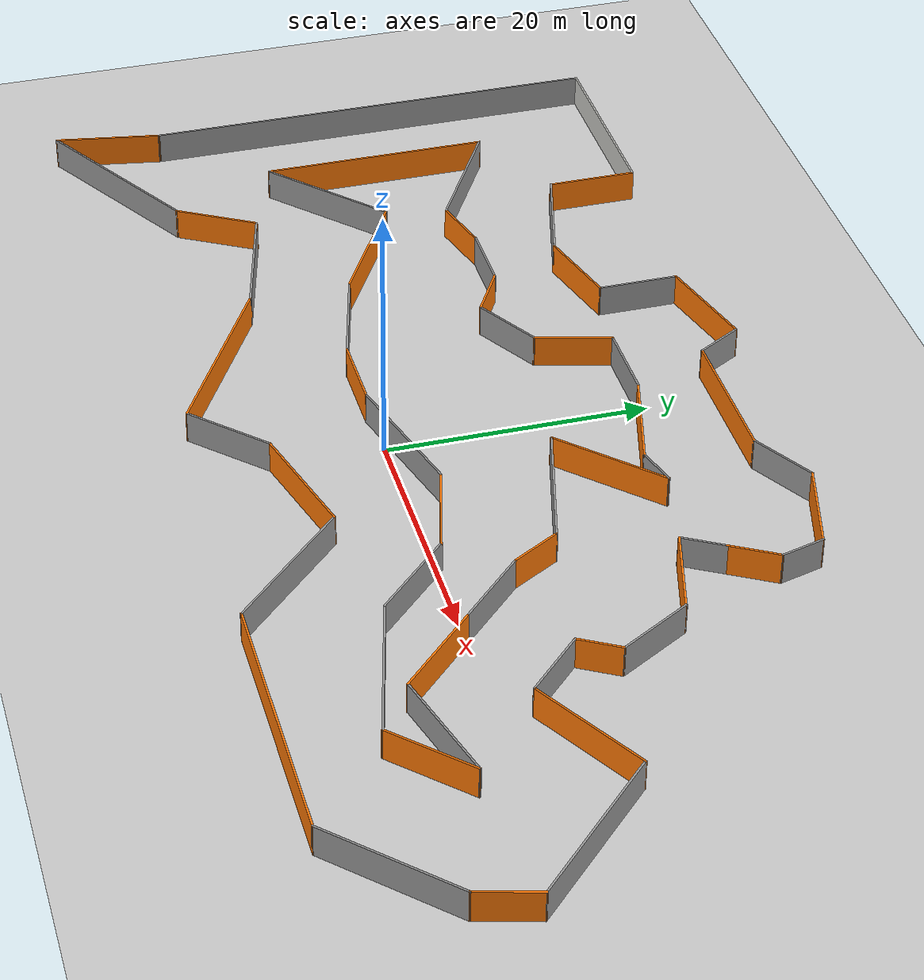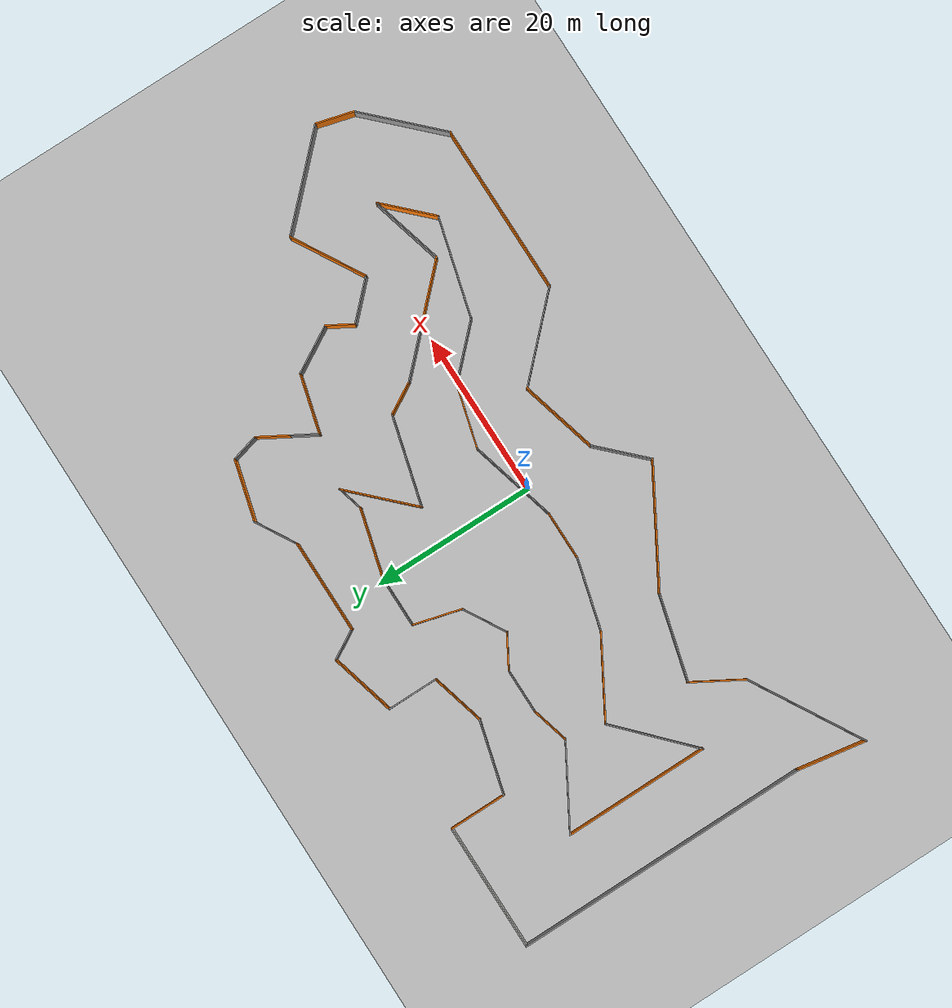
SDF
<sdf version="1.7">
 <world name="default">
  <light name="sun" type="directional">
   <pose>0 0 10 0 -0 0</pose>
   <diffuse>0.8 0.8 0.8 1</diffuse>
   <specular>0.2 0.2 0.2 1</specular>
   <attenuation>
    <range>1000</range>
    <constant>0.9</constant>
    <linear>0.01</linear>
    <quadratic>0.001</quadratic>
   </attenuation>
   <direction>-0.5 0.1 -0.9</direction>
   <spot><inner_angle>0</inner_angle><outer_angle>0</outer_angle><falloff>0</falloff></spot>
  </light>
  <model name="ground_plane">
   <static>1</static>
   <link name="link">
    <collision name="collision">
     <geometry><plane><normal>0 0 1</normal><size>100 100</size></plane></geometry>
     <surface>
      <contact><collide_bitmask>65535</collide_bitmask></contact>
      <friction><ode><mu>100</mu><mu2>50</mu2></ode></friction>
     </surface>
    </collision>
    <visual name="visual">
     <cast_shadows>0</cast_shadows>
     <geometry><plane><normal>0 0 1</normal><size>100 100</size></plane></geometry>
     <material>
      <script><uri>file://media/materials/scripts/gazebo.material</uri><name>Gazebo/Grey</name></script>
     </material>
    </visual>
   </link>
  </model>
  <gravity>0 0 -9.8</gravity>
  <magnetic_field>6e-06 2.3e-05 -4.2e-05</magnetic_field>
  <atmosphere type="adiabatic"/>
  <physics type="ode">
   <max_step_size>0.001</max_step_size>
   <real_time_factor>1</real_time_factor>
   <real_time_update_rate>1000</real_time_update_rate>
  </physics>
  <scene><ambient>0.4 0.4 0.4 1</ambient><background>0.7 0.7 0.7 1</background><shadows>1</shadows></scene>
  <spherical_coordinates>
   <surface_model>EARTH_WGS84</surface_model>
   <latitude_deg>0</latitude_deg>
   <longitude_deg>0</longitude_deg>
   <elevation>0</elevation>
   <heading_deg>0</heading_deg>
  </spherical_coordinates>
  <model name="Wall-Track">
   <pose>1.71304 5.97331 0 0 -0 0</pose>
   <link name="Wall_10">
    <collision name="Wall_10_Collision">
     <geometry><box><size>8.25 0.15 2.5</size></box></geometry>
     <pose>0 0 1.25 0 -0 0</pose>
    </collision>
    <visual name="Wall_10_Visual">
     <pose>0 0 1.25 0 -0 0</pose>
     <geometry><box><size>8.25 0.15 2.5</size></box></geometry>
     <material>
      <script><uri>file://media/materials/scripts/gazebo.material</uri><name>Gazebo/Grey</name></script>
      <ambient>0.996078 0.47451 0.0196078 1</ambient>
     </material>
     <meta><layer>0</layer></meta>
    </visual>
    <pose>-10.185 21.3554 0 0 -0 0.261799</pose>
   </link>
   <link name="Wall_11">
    <collision name="Wall_11_Collision">
     <geometry><box><size>4 0.15 2.5</size></box></geometry>
     <pose>0 0 1.25 0 -0 0</pose>
    </collision>
    <visual name="Wall_11_Visual">
     <pose>0 0 1.25 0 -0 0</pose>
     <geometry><box><size>4 0.15 2.5</size></box></geometry>
     <material>
      <script><uri>file://media/materials/scripts/gazebo.material</uri><name>Gazebo/Grey</name></script>
      <ambient>0 0 0 1</ambient>
     </material>
     <meta><layer>0</layer></meta>
    </visual>
    <pose>-5.31055 20.7365 0 0 -0 -1.0472</pose>
   </link>
   <link name="Wall_12">
    <collision name="Wall_12_Collision">
     <geometry><box><size>11.5 0.15 2.5</size></box></geometry>
     <pose>0 0 1.25 0 -0 0</pose>
    </collision>
    <visual name="Wall_12_Visual">
     <pose>0 0 1.25 0 -0 0</pose>
     <geometry><box><size>11.5 0.15 2.5</size></box></geometry>
     <material>
      <script><uri>file://media/materials/scripts/gazebo.material</uri><name>Gazebo/Grey</name></script>
      <ambient>0.996078 0.47451 0.0196078 1</ambient>
     </material>
     <meta><layer>0</layer></meta>
    </visual>
    <pose>1.32695 19.0694 0 0 -0 0</pose>
   </link>
   <link name="Wall_13">
    <collision name="Wall_13_Collision">
     <geometry><box><size>5.5 0.15 2.5</size></box></geometry>
     <pose>0 0 1.25 0 -0 0</pose>
    </collision>
    <visual name="Wall_13_Visual">
     <pose>0 0 1.25 0 -0 0</pose>
     <geometry><box><size>5.5 0.15 2.5</size></box></geometry>
     <material>
      <script><uri>file://media/materials/scripts/gazebo.material</uri><name>Gazebo/Grey</name></script>
      <ambient>0 0 0 1</ambient>
     </material>
     <meta><layer>0</layer></meta>
    </visual>
    <pose>9.31857 20.4069 0 0 -0 0.523599</pose>
   </link>
   <link name="Wall_14">
    <collision name="Wall_14_Collision">
     <geometry><box><size>7.5 0.15 2.5</size></box></geometry>
     <pose>0 0 1.25 0 -0 0</pose>
    </collision>
    <visual name="Wall_14_Visual">
     <pose>0 0 1.25 0 -0 0</pose>
     <geometry><box><size>7.5 0.15 2.5</size></box></geometry>
     <material>
      <script><uri>file://media/materials/scripts/gazebo.material</uri><name>Gazebo/Grey</name></script>
      <ambient>0.996078 0.47451 0.0196078 1</ambient>
     </material>
     <meta><layer>0</layer></meta>
    </visual>
    <pose>15.185 20.7933 0 0 -0 -0.261799</pose>
   </link>
   <link name="Wall_15">
    <collision name="Wall_15_Collision">
     <geometry><box><size>3.5 0.15 2.5</size></box></geometry>
     <pose>0 0 1.25 0 -0 0</pose>
    </collision>
    <visual name="Wall_15_Visual">
     <pose>0 0 1.25 0 -0 0</pose>
     <geometry><box><size>3.5 0.15 2.5</size></box></geometry>
     <material>
      <script><uri>file://media/materials/scripts/gazebo.material</uri><name>Gazebo/Grey</name></script>
      <ambient>0 0 0 1</ambient>
     </material>
     <meta><layer>0</layer></meta>
    </visual>
    <pose>19.1683 18.2242 0 0 -0 -1.309</pose>
   </link>
   <link name="Wall_16">
    <collision name="Wall_16_Collision">
     <geometry><box><size>4 0.15 2.5</size></box></geometry>
     <pose>0 0 1.25 0 -0 0</pose>
    </collision>
    <visual name="Wall_16_Visual">
     <pose>0 0 1.25 0 -0 0</pose>
     <geometry><box><size>4 0.15 2.5</size></box></geometry>
     <material>
      <script><uri>file://media/materials/scripts/gazebo.material</uri><name>Gazebo/Grey</name></script>
      <ambient>0.996078 0.47451 0.0196078 1</ambient>
     </material>
     <meta><layer>0</layer></meta>
    </visual>
    <pose>18.6393 14.9392 0 0 -0 -2.0944</pose>
   </link>
   <link name="Wall_17">
    <collision name="Wall_17_Collision">
     <geometry><box><size>3.5 0.15 2.5</size></box></geometry>
     <pose>0 0 1.25 0 -0 0</pose>
    </collision>
    <visual name="Wall_17_Visual">
     <pose>0 0 1.25 0 -0 0</pose>
     <geometry><box><size>3.5 0.15 2.5</size></box></geometry>
     <material>
      <script><uri>file://media/materials/scripts/gazebo.material</uri><name>Gazebo/Grey</name></script>
      <ambient>0 0 0 1</ambient>
     </material>
     <meta><layer>0</layer></meta>
    </visual>
    <pose>16.8393 11.8215 0 0 -0 -2.0944</pose>
   </link>
   <link name="Wall_18">
    <collision name="Wall_18_Collision">
     <geometry><box><size>7.25 0.15 2.5</size></box></geometry>
     <pose>0 0 1.25 0 -0 0</pose>
    </collision>
    <visual name="Wall_18_Visual">
     <pose>0 0 1.25 0 -0 0</pose>
     <geometry><box><size>7.25 0.15 2.5</size></box></geometry>
     <material>
      <script><uri>file://media/materials/scripts/gazebo.material</uri><name>Gazebo/Grey</name></script>
      <ambient>0.996078 0.47451 0.0196078 1</ambient>
     </material>
     <meta><layer>0</layer></meta>
    </visual>
    <pose>19.4308 9.45206 0 0 -0 -0.261799</pose>
   </link>
   <link name="Wall_19">
    <collision name="Wall_19_Collision">
     <geometry><box><size>6.25 0.15 2.5</size></box></geometry>
     <pose>0 0 1.25 0 -0 0</pose>
    </collision>
    <visual name="Wall_19_Visual">
     <pose>0 0 1.25 0 -0 0</pose>
     <geometry><box><size>6.25 0.15 2.5</size></box></geometry>
     <material>
      <script><uri>file://media/materials/scripts/gazebo.material</uri><name>Gazebo/Grey</name></script>
      <ambient>0 0 0 1</ambient>
     </material>
     <meta><layer>0</layer></meta>
    </visual>
    <pose>24.3849 5.89188 0 0 -0 -1.0472</pose>
   </link>
   <link name="Wall_20">
    <collision name="Wall_20_Collision">
     <geometry><box><size>3.5 0.15 2.5</size></box></geometry>
     <pose>0 0 1.25 0 -0 0</pose>
    </collision>
    <visual name="Wall_20_Visual">
     <pose>0 0 1.25 0 -0 0</pose>
     <geometry><box><size>3.5 0.15 2.5</size></box></geometry>
     <material>
      <script><uri>file://media/materials/scripts/gazebo.material</uri><name>Gazebo/Grey</name></script>
      <ambient>0.996078 0.47451 0.0196078 1</ambient>
     </material>
     <meta><layer>0</layer></meta>
    </visual>
    <pose>25.0724 1.79991 0 0 -0 -2.0944</pose>
   </link>
   <link name="Wall_21">
    <collision name="Wall_21_Collision">
     <geometry><box><size>5.75 0.15 2.5</size></box></geometry>
     <pose>0 0 1.25 0 -0 0</pose>
    </collision>
    <visual name="Wall_21_Visual">
     <pose>0 0 1.25 0 -0 0</pose>
     <geometry><box><size>5.75 0.15 2.5</size></box></geometry>
     <material>
      <script><uri>file://media/materials/scripts/gazebo.material</uri><name>Gazebo/Grey</name></script>
      <ambient>0 0 0 1</ambient>
     </material>
     <meta><layer>0</layer></meta>
    </visual>
    <pose>26.2148 -1.63058 0 0 -0 -0.785398</pose>
   </link>
   <link name="Wall_22">
    <collision name="Wall_22_Collision">
     <geometry><box><size>9.75 0.15 2.5</size></box></geometry>
     <pose>0 0 1.25 0 -0 0</pose>
    </collision>
    <visual name="Wall_22_Visual">
     <pose>0 0 1.25 0 -0 0</pose>
     <geometry><box><size>9.75 0.15 2.5</size></box></geometry>
     <material>
      <script><uri>file://media/materials/scripts/gazebo.material</uri><name>Gazebo/Grey</name></script>
      <ambient>0.996078 0.47451 0.0196078 1</ambient>
     </material>
     <meta><layer>0</layer></meta>
    </visual>
    <pose>32.3516 -1.21048 0 0 -0 0.523599</pose>
   </link>
   <link name="Wall_23">
    <collision name="Wall_23_Collision">
     <geometry><box><size>13.25 0.15 2.5</size></box></geometry>
     <pose>0 0 1.25 0 -0 0</pose>
    </collision>
    <visual name="Wall_23_Visual">
     <pose>0 0 1.25 0 -0 0</pose>
     <geometry><box><size>13.25 0.15 2.5</size></box></geometry>
     <material>
      <script><uri>file://media/materials/scripts/gazebo.material</uri><name>Gazebo/Grey</name></script>
      <ambient>0 0 0 1</ambient>
     </material>
     <meta><layer>0</layer></meta>
    </visual>
    <pose>41.14 -3.44203 0 0 -0 -0.785398</pose>
   </link>
   <link name="Wall_24">
    <collision name="Wall_24_Collision">
     <geometry><box><size>4.75 0.15 2.5</size></box></geometry>
     <pose>0 0 1.25 0 -0 0</pose>
    </collision>
    <visual name="Wall_24_Visual">
     <pose>0 0 1.25 0 -0 0</pose>
     <geometry><box><size>4.75 0.15 2.5</size></box></geometry>
     <material>
      <script><uri>file://media/materials/scripts/gazebo.material</uri><name>Gazebo/Grey</name></script>
      <ambient>0.996078 0.47451 0.0196078 1</ambient>
     </material>
     <meta><layer>0</layer></meta>
    </visual>
    <pose>45.1763 -10.2952 0 0 -0 -1.8326</pose>
   </link>
   <link name="Wall_25">
    <collision name="Wall_25_Collision">
     <geometry><box><size>11.25 0.15 2.5</size></box></geometry>
     <pose>0 0 1.25 0 -0 0</pose>
    </collision>
    <visual name="Wall_25_Visual">
     <pose>0 0 1.25 0 -0 0</pose>
     <geometry><box><size>11.25 0.15 2.5</size></box></geometry>
     <material>
      <script><uri>file://media/materials/scripts/gazebo.material</uri><name>Gazebo/Grey</name></script>
      <ambient>0 0 0 1</ambient>
     </material>
     <meta><layer>0</layer></meta>
    </visual>
    <pose>40.6566 -16.4413 0 0 -0 -2.35619</pose>
   </link>
   <link name="Wall_26">
    <collision name="Wall_26_Collision">
     <geometry><box><size>20.75 0.15 2.5</size></box></geometry>
     <pose>0 0 1.25 0 -0 0</pose>
    </collision>
    <visual name="Wall_26_Visual">
     <pose>0 0 1.25 0 -0 0</pose>
     <geometry><box><size>20.75 0.15 2.5</size></box></geometry>
     <material>
      <script><uri>file://media/materials/scripts/gazebo.material</uri><name>Gazebo/Grey</name></script>
      <ambient>0.996078 0.47451 0.0196078 1</ambient>
     </material>
     <meta><layer>0</layer></meta>
    </visual>
    <pose>26.4321 -20.3657 0 0 -0 3.14159</pose>
   </link>
   <link name="Wall_27">
    <collision name="Wall_27_Collision">
     <geometry><box><size>12 0.15 2.5</size></box></geometry>
     <pose>0 0 1.25 0 -0 0</pose>
    </collision>
    <visual name="Wall_27_Visual">
     <pose>0 0 1.25 0 -0 0</pose>
     <geometry><box><size>12 0.15 2.5</size></box></geometry>
     <material>
      <script><uri>file://media/materials/scripts/gazebo.material</uri><name>Gazebo/Grey</name></script>
      <ambient>0 0 0 1</ambient>
     </material>
     <meta><layer>0</layer></meta>
    </visual>
    <pose>11.9425 -16.1761 0 0 -0 2.35619</pose>
   </link>
   <link name="Wall_28">
    <collision name="Wall_28_Collision">
     <geometry><box><size>9.75 0.15 2.5</size></box></geometry>
     <pose>0 0 1.25 0 -0 0</pose>
    </collision>
    <visual name="Wall_28_Visual">
     <pose>0 0 1.25 0 -0 0</pose>
     <geometry><box><size>9.75 0.15 2.5</size></box></geometry>
     <material>
      <script><uri>file://media/materials/scripts/gazebo.material</uri><name>Gazebo/Grey</name></script>
      <ambient>0.996078 0.47451 0.0196078 1</ambient>
     </material>
     <meta><layer>0</layer></meta>
    </visual>
    <pose>3.11649 -13.2288 0 0 -0 -2.87979</pose>
   </link>
   <link name="Wall_29">
    <collision name="Wall_29_Collision">
     <geometry><box><size>7.25 0.15 2.5</size></box></geometry>
     <pose>0 0 1.25 0 -0 0</pose>
    </collision>
    <visual name="Wall_29_Visual">
     <pose>0 0 1.25 0 -0 0</pose>
     <geometry><box><size>7.25 0.15 2.5</size></box></geometry>
     <material>
      <script><uri>file://media/materials/scripts/gazebo.material</uri><name>Gazebo/Grey</name></script>
      <ambient>0 0 0 1</ambient>
     </material>
     <meta><layer>0</layer></meta>
    </visual>
    <pose>-4.03019 -16.9814 0 0 -0 -2.35619</pose>
   </link>
   <link name="Wall_30">
    <collision name="Wall_30_Collision">
     <geometry><box><size>15.25 0.15 2.5</size></box></geometry>
     <pose>0 0 1.25 0 -0 0</pose>
    </collision>
    <visual name="Wall_30_Visual">
     <pose>0 0 1.25 0 -0 0</pose>
     <geometry><box><size>15.25 0.15 2.5</size></box></geometry>
     <material>
      <script><uri>file://media/materials/scripts/gazebo.material</uri><name>Gazebo/Grey</name></script>
      <ambient>0.996078 0.47451 0.0196078 1</ambient>
     </material>
     <meta><layer>0</layer></meta>
    </visual>
    <pose>-13.0789 -15.7166 0 0 -0 2.61799</pose>
   </link>
   <link name="Wall_31">
    <collision name="Wall_31_Collision">
     <geometry><box><size>10.5 0.15 2.5</size></box></geometry>
     <pose>0 0 1.25 0 -0 0</pose>
    </collision>
    <visual name="Wall_31_Visual">
     <pose>0 0 1.25 0 -0 0</pose>
     <geometry><box><size>10.5 0.15 2.5</size></box></geometry>
     <material>
      <script><uri>file://media/materials/scripts/gazebo.material</uri><name>Gazebo/Grey</name></script>
      <ambient>0 0 0 1</ambient>
     </material>
     <meta><layer>0</layer></meta>
    </visual>
    <pose>-24.6161 -10.6022 0 0 -0 2.87979</pose>
   </link>
   <link name="Wall_32">
    <collision name="Wall_32_Collision">
     <geometry><box><size>6.75 0.15 2.5</size></box></geometry>
     <pose>0 0 1.25 0 -0 0</pose>
    </collision>
    <visual name="Wall_32_Visual">
     <pose>0 0 1.25 0 -0 0</pose>
     <geometry><box><size>6.75 0.15 2.5</size></box></geometry>
     <material>
      <script><uri>file://media/materials/scripts/gazebo.material</uri><name>Gazebo/Grey</name></script>
      <ambient>0.996078 0.47451 0.0196078 1</ambient>
     </material>
     <meta><layer>0</layer></meta>
    </visual>
    <pose>-31.2647 -12.1207 0 0 -0 -2.0944</pose>
   </link>
   <link name="Wall_33">
    <collision name="Wall_33_Collision">
     <geometry><box><size>15 0.15 2.5</size></box></geometry>
     <pose>0 0 1.25 0 -0 0</pose>
    </collision>
    <visual name="Wall_33_Visual">
     <pose>0 0 1.25 0 -0 0</pose>
     <geometry><box><size>15 0.15 2.5</size></box></geometry>
     <material>
      <script><uri>file://media/materials/scripts/gazebo.material</uri><name>Gazebo/Grey</name></script>
      <ambient>0 0 0 1</ambient>
     </material>
     <meta><layer>0</layer></meta>
    </visual>
    <pose>-39.345 -18.6911 0 0 -0 -2.61799</pose>
   </link>
   <link name="Wall_34">
    <collision name="Wall_34_Collision">
     <geometry><box><size>8.46268 0.15 2.5</size></box></geometry>
     <pose>0 0 1.25 0 -0 0</pose>
    </collision>
    <visual name="Wall_34_Visual">
     <pose>0 0 1.25 0 -0 0</pose>
     <geometry><box><size>8.46268 0.15 2.5</size></box></geometry>
     <material>
      <script><uri>file://media/materials/scripts/gazebo.material</uri><name>Gazebo/Grey</name></script>
      <ambient>0.996078 0.47451 0.0196078 1</ambient>
     </material>
     <meta><layer>0</layer></meta>
    </visual>
    <pose>-45.0729 -18.307 0 0 -0 1.40101</pose>
   </link>
   <link name="Wall_36">
    <collision name="Wall_36_Collision">
     <geometry><box><size>17.75 0.15 2.5</size></box></geometry>
     <pose>0 0 1.25 0 -0 0</pose>
    </collision>
    <visual name="Wall_36_Visual">
     <pose>0 0 1.25 0 -0 0</pose>
     <geometry><box><size>17.75 0.15 2.5</size></box></geometry>
     <material>
      <script><uri>file://media/materials/scripts/gazebo.material</uri><name>Gazebo/Grey</name></script>
      <ambient>0.996078 0.47451 0.0196078 1</ambient>
     </material>
     <meta><layer>0</layer></meta>
    </visual>
    <pose>-36.7003 2.1643 0 0 -0 1.5708</pose>
   </link>
   <link name="Wall_37">
    <collision name="Wall_37_Collision">
     <geometry><box><size>10.75 0.15 2.5</size></box></geometry>
     <pose>0 0 1.25 0 -0 0</pose>
    </collision>
    <visual name="Wall_37_Visual">
     <pose>0 0 1.25 0 -0 0</pose>
     <geometry><box><size>10.75 0.15 2.5</size></box></geometry>
     <material>
      <script><uri>file://media/materials/scripts/gazebo.material</uri><name>Gazebo/Grey</name></script>
      <ambient>0 0 0 1</ambient>
     </material>
     <meta><layer>0</layer></meta>
    </visual>
    <pose>-32.1104 8.31429 0 0 -0 -0.523599</pose>
   </link>
   <link name="Wall_38">
    <collision name="Wall_38_Collision">
     <geometry><box><size>4.75 0.15 2.5</size></box></geometry>
     <pose>0 0 1.25 0 -0 0</pose>
    </collision>
    <visual name="Wall_38_Visual">
     <pose>0 0 1.25 0 -0 0</pose>
     <geometry><box><size>4.75 0.15 2.5</size></box></geometry>
     <material>
      <script><uri>file://media/materials/scripts/gazebo.material</uri><name>Gazebo/Grey</name></script>
      <ambient>0.996078 0.47451 0.0196078 1</ambient>
     </material>
     <meta><layer>0</layer></meta>
    </visual>
    <pose>-25.2988 6.25958 0 0 -0 0.261799</pose>
   </link>
   <link name="Wall_39">
    <collision name="Wall_39_Collision">
     <geometry><box><size>5.5 0.15 2.5</size></box></geometry>
     <pose>0 0 1.25 0 -0 0</pose>
    </collision>
    <visual name="Wall_39_Visual">
     <pose>0 0 1.25 0 -0 0</pose>
     <geometry><box><size>5.5 0.15 2.5</size></box></geometry>
     <material>
      <script><uri>file://media/materials/scripts/gazebo.material</uri><name>Gazebo/Grey</name></script>
      <ambient>0 0 0 1</ambient>
     </material>
     <meta><layer>0</layer></meta>
    </visual>
    <pose>-20.4022 6.85486 0 0 -0 0</pose>
   </link>
   <link name="Wall_4">
    <collision name="Wall_4_Collision">
     <geometry><box><size>36 0.15 2.5</size></box></geometry>
     <pose>0 0 1.25 0 -0 0</pose>
    </collision>
    <visual name="Wall_4_Visual">
     <pose>0 0 1.25 0 -0 0</pose>
     <geometry><box><size>36 0.15 2.5</size></box></geometry>
     <material>
      <script><uri>file://media/materials/scripts/gazebo.material</uri><name>Gazebo/Grey</name></script>
      <ambient>0 0 0 1</ambient>
     </material>
     <meta><layer>0</layer></meta>
    </visual>
    <pose>-44.3706 3.71453 0 0 -0 1.5708</pose>
   </link>
   <link name="Wall_40">
    <collision name="Wall_40_Collision">
     <geometry><box><size>4.5 0.15 2.5</size></box></geometry>
     <pose>0 0 1.25 0 -0 0</pose>
    </collision>
    <visual name="Wall_40_Visual">
     <pose>0 0 1.25 0 -0 0</pose>
     <geometry><box><size>4.5 0.15 2.5</size></box></geometry>
     <material>
      <script><uri>file://media/materials/scripts/gazebo.material</uri><name>Gazebo/Grey</name></script>
      <ambient>0.996078 0.47451 0.0196078 1</ambient>
     </material>
     <meta><layer>0</layer></meta>
    </visual>
    <pose>-15.8436 5.76736 0 0 -0 -0.523599</pose>
   </link>
   <link name="Wall_41">
    <collision name="Wall_41_Collision">
     <geometry><box><size>5.75 0.15 2.5</size></box></geometry>
     <pose>0 0 1.25 0 -0 0</pose>
    </collision>
    <visual name="Wall_41_Visual">
     <pose>0 0 1.25 0 -0 0</pose>
     <geometry><box><size>5.75 0.15 2.5</size></box></geometry>
     <material>
      <script><uri>file://media/materials/scripts/gazebo.material</uri><name>Gazebo/Grey</name></script>
      <ambient>0 0 0 1</ambient>
     </material>
     <meta><layer>0</layer></meta>
    </visual>
    <pose>-11.5351 6.07986 0 0 -0 0.523599</pose>
   </link>
   <link name="Wall_42">
    <collision name="Wall_42_Collision">
     <geometry><box><size>6 0.15 2.5</size></box></geometry>
     <pose>0 0 1.25 0 -0 0</pose>
    </collision>
    <visual name="Wall_42_Visual">
     <pose>0 0 1.25 0 -0 0</pose>
     <geometry><box><size>6 0.15 2.5</size></box></geometry>
     <material>
      <script><uri>file://media/materials/scripts/gazebo.material</uri><name>Gazebo/Grey</name></script>
      <ambient>0.996078 0.47451 0.0196078 1</ambient>
     </material>
     <meta><layer>0</layer></meta>
    </visual>
    <pose>-8.35318 10.3052 0 0 -0 1.309</pose>
   </link>
   <link name="Wall_43">
    <collision name="Wall_43_Collision">
     <geometry><box><size>6.25 0.15 2.5</size></box></geometry>
     <pose>0 0 1.25 0 -0 0</pose>
    </collision>
    <visual name="Wall_43_Visual">
     <pose>0 0 1.25 0 -0 0</pose>
     <geometry><box><size>6.25 0.15 2.5</size></box></geometry>
     <material>
      <script><uri>file://media/materials/scripts/gazebo.material</uri><name>Gazebo/Grey</name></script>
      <ambient>0 0 0 1</ambient>
     </material>
     <meta><layer>0</layer></meta>
    </visual>
    <pose>-4.54614 13.1305 0 0 -0 0</pose>
   </link>
   <link name="Wall_44">
    <collision name="Wall_44_Collision">
     <geometry><box><size>8.5 0.15 2.5</size></box></geometry>
     <pose>0 0 1.25 0 -0 0</pose>
    </collision>
    <visual name="Wall_44_Visual">
     <pose>0 0 1.25 0 -0 0</pose>
     <geometry><box><size>8.5 0.15 2.5</size></box></geometry>
     <material>
      <script><uri>file://media/materials/scripts/gazebo.material</uri><name>Gazebo/Grey</name></script>
      <ambient>0.996078 0.47451 0.0196078 1</ambient>
     </material>
     <meta><layer>0</layer></meta>
    </visual>
    <pose>2.5366 12.05 0 0 -0 -0.261799</pose>
   </link>
   <link name="Wall_45">
    <collision name="Wall_45_Collision">
     <geometry><box><size>3.25 0.15 2.5</size></box></geometry>
     <pose>0 0 1.25 0 -0 0</pose>
    </collision>
    <visual name="Wall_45_Visual">
     <pose>0 0 1.25 0 -0 0</pose>
     <geometry><box><size>3.25 0.15 2.5</size></box></geometry>
     <material>
      <script><uri>file://media/materials/scripts/gazebo.material</uri><name>Gazebo/Grey</name></script>
      <ambient>0 0 0 1</ambient>
     </material>
     <meta><layer>0</layer></meta>
    </visual>
    <pose>8.06653 11.3706 0 0 -0 0.261799</pose>
   </link>
   <link name="Wall_46">
    <collision name="Wall_46_Collision">
     <geometry><box><size>9.5 0.15 2.5</size></box></geometry>
     <pose>0 0 1.25 0 -0 0</pose>
    </collision>
    <visual name="Wall_46_Visual">
     <pose>0 0 1.25 0 -0 0</pose>
     <geometry><box><size>9.5 0.15 2.5</size></box></geometry>
     <material>
      <script><uri>file://media/materials/scripts/gazebo.material</uri><name>Gazebo/Grey</name></script>
      <ambient>0.996078 0.47451 0.0196078 1</ambient>
     </material>
     <meta><layer>0</layer></meta>
    </visual>
    <pose>6.25799 8.466 0 0 -0 -2.35619</pose>
   </link>
   <link name="Wall_47">
    <collision name="Wall_47_Collision">
     <geometry><box><size>11 0.15 2.5</size></box></geometry>
     <pose>0 0 1.25 0 -0 0</pose>
    </collision>
    <visual name="Wall_47_Visual">
     <pose>0 0 1.25 0 -0 0</pose>
     <geometry><box><size>11 0.15 2.5</size></box></geometry>
     <material>
      <script><uri>file://media/materials/scripts/gazebo.material</uri><name>Gazebo/Grey</name></script>
      <ambient>0 0 0 1</ambient>
     </material>
     <meta><layer>0</layer></meta>
    </visual>
    <pose>8.19241 3.75619 0 0 -0 -0.261799</pose>
   </link>
   <link name="Wall_48">
    <collision name="Wall_48_Collision">
     <geometry><box><size>4.25 0.15 2.5</size></box></geometry>
     <pose>0 0 1.25 0 -0 0</pose>
    </collision>
    <visual name="Wall_48_Visual">
     <pose>0 0 1.25 0 -0 0</pose>
     <geometry><box><size>4.25 0.15 2.5</size></box></geometry>
     <material>
      <script><uri>file://media/materials/scripts/gazebo.material</uri><name>Gazebo/Grey</name></script>
      <ambient>0.996078 0.47451 0.0196078 1</ambient>
     </material>
     <meta><layer>0</layer></meta>
    </visual>
    <pose>14.4576 0.576742 0 0 -0 -1.0472</pose>
   </link>
   <link name="Wall_49">
    <collision name="Wall_49_Collision">
     <geometry><box><size>6.75 0.15 2.5</size></box></geometry>
     <pose>0 0 1.25 0 -0 0</pose>
    </collision>
    <visual name="Wall_49_Visual">
     <pose>0 0 1.25 0 -0 0</pose>
     <geometry><box><size>6.75 0.15 2.5</size></box></geometry>
     <material>
      <script><uri>file://media/materials/scripts/gazebo.material</uri><name>Gazebo/Grey</name></script>
      <ambient>0 0 0 1</ambient>
     </material>
     <meta><layer>0</layer></meta>
    </visual>
    <pose>17.816 -3.53206 0 0 -0 -0.785398</pose>
   </link>
   <link name="Wall_5">
    <collision name="Wall_5_Collision">
     <geometry><box><size>15.5 0.15 2.5</size></box></geometry>
     <pose>0 0 1.25 0 -0 0</pose>
    </collision>
    <visual name="Wall_5_Visual">
     <pose>0 0 1.25 0 -0 0</pose>
     <geometry><box><size>15.5 0.15 2.5</size></box></geometry>
     <material>
      <script><uri>file://media/materials/scripts/gazebo.material</uri><name>Gazebo/CeilingTiled</name></script>
      <ambient>0.996078 0.47451 0.0196078 1</ambient>
     </material>
     <meta><layer>0</layer></meta>
    </visual>
    <pose>-36.6956 21.6395 0 0 -0 0</pose>
   </link>
   <link name="Wall_50">
    <collision name="Wall_50_Collision">
     <geometry><box><size>8 0.15 2.5</size></box></geometry>
     <pose>0 0 1.25 0 -0 0</pose>
    </collision>
    <visual name="Wall_50_Visual">
     <pose>0 0 1.25 0 -0 0</pose>
     <geometry><box><size>8 0.15 2.5</size></box></geometry>
     <material>
      <script><uri>file://media/materials/scripts/gazebo.material</uri><name>Gazebo/Grey</name></script>
      <ambient>0.996078 0.47451 0.0196078 1</ambient>
     </material>
     <meta><layer>0</layer></meta>
    </visual>
    <pose>22.9249 -8.64091 0 0 -0 -0.785398</pose>
   </link>
   <link name="Wall_51">
    <collision name="Wall_51_Collision">
     <geometry><box><size>9.25 0.15 2.5</size></box></geometry>
     <pose>0 0 1.25 0 -0 0</pose>
    </collision>
    <visual name="Wall_51_Visual">
     <pose>0 0 1.25 0 -0 0</pose>
     <geometry><box><size>9.25 0.15 2.5</size></box></geometry>
     <material>
      <script><uri>file://media/materials/scripts/gazebo.material</uri><name>Gazebo/Grey</name></script>
      <ambient>0 0 0 1</ambient>
     </material>
     <meta><layer>0</layer></meta>
    </visual>
    <pose>30.0952 -10.2387 0 0 -0 0.261799</pose>
   </link>
   <link name="Wall_52">
    <collision name="Wall_52_Collision">
     <geometry><box><size>7.25 0.15 2.5</size></box></geometry>
     <pose>0 0 1.25 0 -0 0</pose>
    </collision>
    <visual name="Wall_52_Visual">
     <pose>0 0 1.25 0 -0 0</pose>
     <geometry><box><size>7.25 0.15 2.5</size></box></geometry>
     <material>
      <script><uri>file://media/materials/scripts/gazebo.material</uri><name>Gazebo/Grey</name></script>
      <ambient>0.996078 0.47451 0.0196078 1</ambient>
     </material>
     <meta><layer>0</layer></meta>
    </visual>
    <pose>31.9799 -11.5713 0 0 -0 -2.35619</pose>
   </link>
   <link name="Wall_53">
    <collision name="Wall_53_Collision">
     <geometry><box><size>12.25 0.15 2.5</size></box></geometry>
     <pose>0 0 1.25 0 -0 0</pose>
    </collision>
    <visual name="Wall_53_Visual">
     <pose>0 0 1.25 0 -0 0</pose>
     <geometry><box><size>12.25 0.15 2.5</size></box></geometry>
     <material>
      <script><uri>file://media/materials/scripts/gazebo.material</uri><name>Gazebo/Grey</name></script>
      <ambient>0 0 0 1</ambient>
     </material>
     <meta><layer>0</layer></meta>
    </visual>
    <pose>23.6259 -12.5157 0 0 -0 2.87979</pose>
   </link>
   <link name="Wall_54">
    <collision name="Wall_54_Collision">
     <geometry><box><size>7.75 0.15 2.5</size></box></geometry>
     <pose>0 0 1.25 0 -0 0</pose>
    </collision>
    <visual name="Wall_54_Visual">
     <pose>0 0 1.25 0 -0 0</pose>
     <geometry><box><size>7.75 0.15 2.5</size></box></geometry>
     <material>
      <script><uri>file://media/materials/scripts/gazebo.material</uri><name>Gazebo/Grey</name></script>
      <ambient>0 0 0 1</ambient>
     </material>
     <meta><layer>0</layer></meta>
    </visual>
    <pose>15.095 -8.26279 0 0 -0 2.35619</pose>
   </link>
   <link name="Wall_55">
    <collision name="Wall_55_Collision">
     <geometry><box><size>7.75 0.15 2.5</size></box></geometry>
     <pose>0 0 1.25 0 -0 0</pose>
    </collision>
    <visual name="Wall_55_Visual">
     <pose>0 0 1.25 0 -0 0</pose>
     <geometry><box><size>7.75 0.15 2.5</size></box></geometry>
     <material>
      <script><uri>file://media/materials/scripts/gazebo.material</uri><name>Gazebo/Grey</name></script>
      <ambient>0.996078 0.47451 0.0196078 1</ambient>
     </material>
     <meta><layer>0</layer></meta>
    </visual>
    <pose>8.73749 -4.59227 0 0 -0 2.87979</pose>
   </link>
   <link name="Wall_56">
    <collision name="Wall_56_Collision">
     <geometry><box><size>11 0.15 2.5</size></box></geometry>
     <pose>0 0 1.25 0 -0 0</pose>
    </collision>
    <visual name="Wall_56_Visual">
     <pose>0 0 1.25 0 -0 0</pose>
     <geometry><box><size>11 0.15 2.5</size></box></geometry>
     <material>
      <script><uri>file://media/materials/scripts/gazebo.material</uri><name>Gazebo/Grey</name></script>
      <ambient>0 0 0 1</ambient>
     </material>
     <meta><layer>0</layer></meta>
    </visual>
    <pose>-0.173178 -5.01286 0 0 -0 -2.87979</pose>
   </link>
   <link name="Wall_57">
    <collision name="Wall_57_Collision">
     <geometry><box><size>6 0.15 2.5</size></box></geometry>
     <pose>0 0 1.25 0 -0 0</pose>
    </collision>
    <visual name="Wall_57_Visual">
     <pose>0 0 1.25 0 -0 0</pose>
     <geometry><box><size>6 0.15 2.5</size></box></geometry>
     <material>
      <script><uri>file://media/materials/scripts/gazebo.material</uri><name>Gazebo/Grey</name></script>
      <ambient>0.996078 0.47451 0.0196078 1</ambient>
     </material>
     <meta><layer>0</layer></meta>
    </visual>
    <pose>-8.33833 -6.41695 0 0 -0 3.14159</pose>
   </link>
   <link name="Wall_58">
    <collision name="Wall_58_Collision">
     <geometry><box><size>8.75 0.15 2.5</size></box></geometry>
     <pose>0 0 1.25 0 -0 0</pose>
    </collision>
    <visual name="Wall_58_Visual">
     <pose>0 0 1.25 0 -0 0</pose>
     <geometry><box><size>8.75 0.15 2.5</size></box></geometry>
     <material>
      <script><uri>file://media/materials/scripts/gazebo.material</uri><name>Gazebo/Grey</name></script>
      <ambient>0 0 0 1</ambient>
     </material>
     <meta><layer>0</layer></meta>
    </visual>
    <pose>-15.4168 -5.30403 0 0 -0 2.87979</pose>
   </link>
   <link name="Wall_59">
    <collision name="Wall_59_Collision">
     <geometry><box><size>10.5 0.15 2.5</size></box></geometry>
     <pose>0 0 1.25 0 -0 0</pose>
    </collision>
    <visual name="Wall_59_Visual">
     <pose>0 0 1.25 0 -0 0</pose>
     <geometry><box><size>10.5 0.15 2.5</size></box></geometry>
     <material>
      <script><uri>file://media/materials/scripts/gazebo.material</uri><name>Gazebo/Grey</name></script>
      <ambient>0.996078 0.47451 0.0196078 1</ambient>
     </material>
     <meta><layer>0</layer></meta>
    </visual>
    <pose>-24.052 -1.6036 0 0 -0 2.61799</pose>
   </link>
   <link name="Wall_6">
    <collision name="Wall_6_Collision">
     <geometry><box><size>7 0.15 2.5</size></box></geometry>
     <pose>0 0 1.25 0 -0 0</pose>
    </collision>
    <visual name="Wall_6_Visual">
     <pose>0 0 1.25 0 -0 0</pose>
     <geometry><box><size>7 0.15 2.5</size></box></geometry>
     <material>
      <script><uri>file://media/materials/scripts/gazebo.material</uri><name>Gazebo/Grey</name></script>
      <ambient>0.996078 0.47451 0.0196078 1</ambient>
     </material>
     <meta><layer>0</layer></meta>
    </visual>
    <pose>-29.0206 18.2145 0 0 -0 -1.5708</pose>
   </link>
   <link name="Wall_60">
    <collision name="Wall_60_Collision">
     <geometry><box><size>11.3193 0.15 2.5</size></box></geometry>
     <pose>0 0 1.25 0 -0 0</pose>
    </collision>
    <visual name="Wall_60_Visual">
     <pose>0 0 1.25 0 -0 0</pose>
     <geometry><box><size>11.3193 0.15 2.5</size></box></geometry>
     <material>
      <script><uri>file://media/materials/scripts/gazebo.material</uri><name>Gazebo/Grey</name></script>
      <ambient>0 0 0 1</ambient>
     </material>
     <meta><layer>0</layer></meta>
    </visual>
    <pose>-32.617 -2.82591 0 0 -0 -2.39084</pose>
   </link>
   <link name="Wall_7">
    <collision name="Wall_7_Collision">
     <geometry><box><size>9 0.15 2.5</size></box></geometry>
     <pose>0 0 1.25 0 -0 0</pose>
    </collision>
    <visual name="Wall_7_Visual">
     <pose>0 0 1.25 0 -0 0</pose>
     <geometry><box><size>9 0.15 2.5</size></box></geometry>
     <material>
      <script><uri>file://media/materials/scripts/gazebo.material</uri><name>Gazebo/Grey</name></script>
      <ambient>0 0 0 1</ambient>
     </material>
     <meta><layer>0</layer></meta>
    </visual>
    <pose>-24.7464 13.6443 0 0 -0 -0.261799</pose>
   </link>
   <link name="Wall_8">
    <collision name="Wall_8_Collision">
     <geometry><box><size>6.75 0.15 2.5</size></box></geometry>
     <pose>0 0 1.25 0 -0 0</pose>
    </collision>
    <visual name="Wall_8_Visual">
     <pose>0 0 1.25 0 -0 0</pose>
     <geometry><box><size>6.75 0.15 2.5</size></box></geometry>
     <material>
      <script><uri>file://media/materials/scripts/gazebo.material</uri><name>Gazebo/Grey</name></script>
      <ambient>0.996078 0.47451 0.0196078 1</ambient>
     </material>
     <meta><layer>0</layer></meta>
    </visual>
    <pose>-17.2846 13.3531 0 0 -0 0.261799</pose>
   </link>
   <link name="Wall_9">
    <collision name="Wall_9_Collision">
     <geometry><box><size>6.25 0.15 2.5</size></box></geometry>
     <pose>0 0 1.25 0 -0 0</pose>
    </collision>
    <visual name="Wall_9_Visual">
     <pose>0 0 1.25 0 -0 0</pose>
     <geometry><box><size>6.25 0.15 2.5</size></box></geometry>
     <material>
      <script><uri>file://media/materials/scripts/gazebo.material</uri><name>Gazebo/Grey</name></script>
      <ambient>0 0 0 1</ambient>
     </material>
     <meta><layer>0</layer></meta>
    </visual>
    <pose>-14.097 17.2572 0 0 -0 1.5708</pose>
   </link>
   <static>1</static>
  </model>
 </world>
</sdf>
